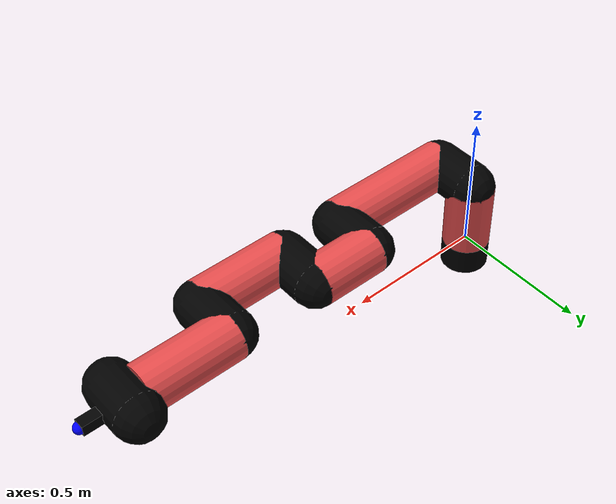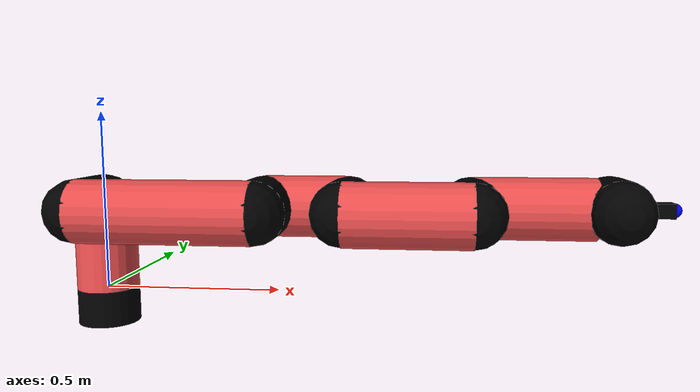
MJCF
<mujoco model="manipulator">
		<compiler angle="degree" coordinate="local" inertiafromgeom="auto" meshdir="meshes/"/>
		<option gravity="0 0 0" integrator="RK4" iterations="30" timestep="0.01"/>

		<default>
		<joint armature="1" limited="true" stiffness="10" damping="15" frictionloss="5.0"/>
		<geom conaffinity="1" condim="3" contype="1" friction=".5 .1 .1" margin="0.002"/>
		<motor ctrllimited="true"/>
		<position ctrllimited="true"/>
		</default>

		<asset>
		<texture builtin="gradient" height="100" rgb1="1.0 1.0 1.0" rgb2="1.0 1.0 1.0" type="skybox" width="100"/>
		<texture builtin="flat" height="32" name="arm_tex" rgb1="0.9 0.3 0.3" type="2d" width="32"/>
		<texture builtin="flat" height="32" name="gripper_tex" rgb1="0.0 0.0 0.0" type="cube" width="32"/>

		<material name="arm_mat" shininess="0.1" specular="0.1" texture="arm_tex"/>
		<material name="gripper_mat" shininess="1" specular="1" texture="gripper_tex"/>
		</asset>

		<worldbody>
		<light cutoff="45" diffuse=".8 .8 .8" dir="0 0.16 -1" directional="false" name="light" pos="0 -2.0 8.0" specular="0.3 0.3 0.3"/>

		<body name="base_link" pos="0 0 -0.1">
		<geom fromto="0 0 0 0 0 0.1" material="arm_mat" name="base_link" rgba="0.0 0.0 0.0 1" size="0.085" type="cylinder"/>
		</body>

		<body name="l1" pos="0 0 0">
<geom fromto="0 0 0 0 0 0.24" material="arm_mat" name="l1" rgba="0.9 0.3 0.3 1" size="0.085" type="cylinder"/>
<geom fromto="0 0 0.24 0 -0.16 0.24" material="arm_mat" name="l1_ex" rgba="0.0 0.0 0.0 1" size="0.085" type="capsule"/>
<joint axis="0 0 1" name="j1" pos="0 0 0" range="-90 90" damping="30.49" frictionloss="10.32"/>

<body name="l2" pos="0 -0.16 0.24">
<geom fromto="0 0 0 0.47 0 0" material="arm_mat" name="l2" rgba="0.9 0.3 0.3 1" size="0.085" type="cylinder"/>
<geom fromto="0.47 0 0 0.47 0.16 0" material="arm_mat" name="l2_ex" rgba="0.0 0.0 0.0 1" size="0.085" type="capsule"/>
<joint axis="0.0 1.0 0.0" name="j2" pos="0 0 0" range="-90 60" damping="24.57" frictionloss="11.97"/>

<body name="l3" pos="0.47 0.16 0">
<geom fromto="0 0 0 0.23 0 0" material="arm_mat" name="l3" rgba="0.9 0.3 0.3 1" size="0.085" type="cylinder"/>
<geom fromto="0.23 0 0 0.23 -0.16 0" material="arm_mat" name="l3_ex" rgba="0.0 0.0 0.0 1" size="0.085" type="capsule"/>
<joint axis="0.0 1.0 0.0" name="j3" pos="0 0 0" range="-30 60" damping="29.63" frictionloss="10.15"/>

<body name="l4" pos="0.23 -0.16 0">
<geom fromto="0 0 0 0.33 0 0" material="arm_mat" name="l4" rgba="0.9 0.3 0.3 1" size="0.085" type="cylinder"/>
<geom fromto="0.33 0 0 0.33 0.16 0" material="arm_mat" name="l4_ex" rgba="0.0 0.0 0.0 1" size="0.085" type="capsule"/>
<joint axis="0.0 1.0 0.0" name="j4" pos="0 0 0" range="-30 60" damping="25.59" frictionloss="12.04"/>

<body name="l5" pos="0.33 0.16 0">
<geom fromto="0 0 0 0.33 0 0" material="arm_mat" name="l5" rgba="0.9 0.3 0.3 1" size="0.085" type="cylinder"/>
<joint axis="0.0 1.0 0.0" name="j5" pos="0 0 0" range="-30 60" damping="23.13" frictionloss="11.6"/>

<body name="gripper" pos="0.33 0 0">
<geom fromto="0.05 -0.07 0 0.05 0.07 0" material="gripper_mat" name="gripper" rgba="0.0 0.0 0.0 1" size="0.085" type="capsule"/><joint axis="1 0 0" name="j6" pos="0 0 0" range="-90 90" damping="15" frictionloss="5.0"/><body name="finger" pos="0.1 0 0">
<geom fromto="0 0.0 0 0.1 0.0 0" material="gripper_mat" name="finger" rgba="0.0 0.0 0.0 1" size="0.020 0.06 0.06" type="box"/>
</body>
<site name="current" pos="0.2 0. 0.0" rgba="0. 0. 1.0 1" size="0.02" type="sphere"/>
</body>
</body>
</body>
</body>
</body>
</body>
</worldbody>
<actuator>
<motor ctrllimited="true" ctrlrange="-1.0 1.0" joint="j1" gear="65.71"/>
<motor ctrllimited="true" ctrlrange="-1.0 1.0" joint="j2" gear="73.94"/>
<motor ctrllimited="true" ctrlrange="-1.0 1.0" joint="j3" gear="95.49"/>
<motor ctrllimited="true" ctrlrange="-1.0 1.0" joint="j4" gear="60.2"/>
<motor ctrllimited="true" ctrlrange="-1.0 1.0" joint="j5" gear="67.58"/>
<motor ctrllimited="true" ctrlrange="-1.0 1.0" joint="j6" gear="80"/>
</actuator>
</mujoco>
